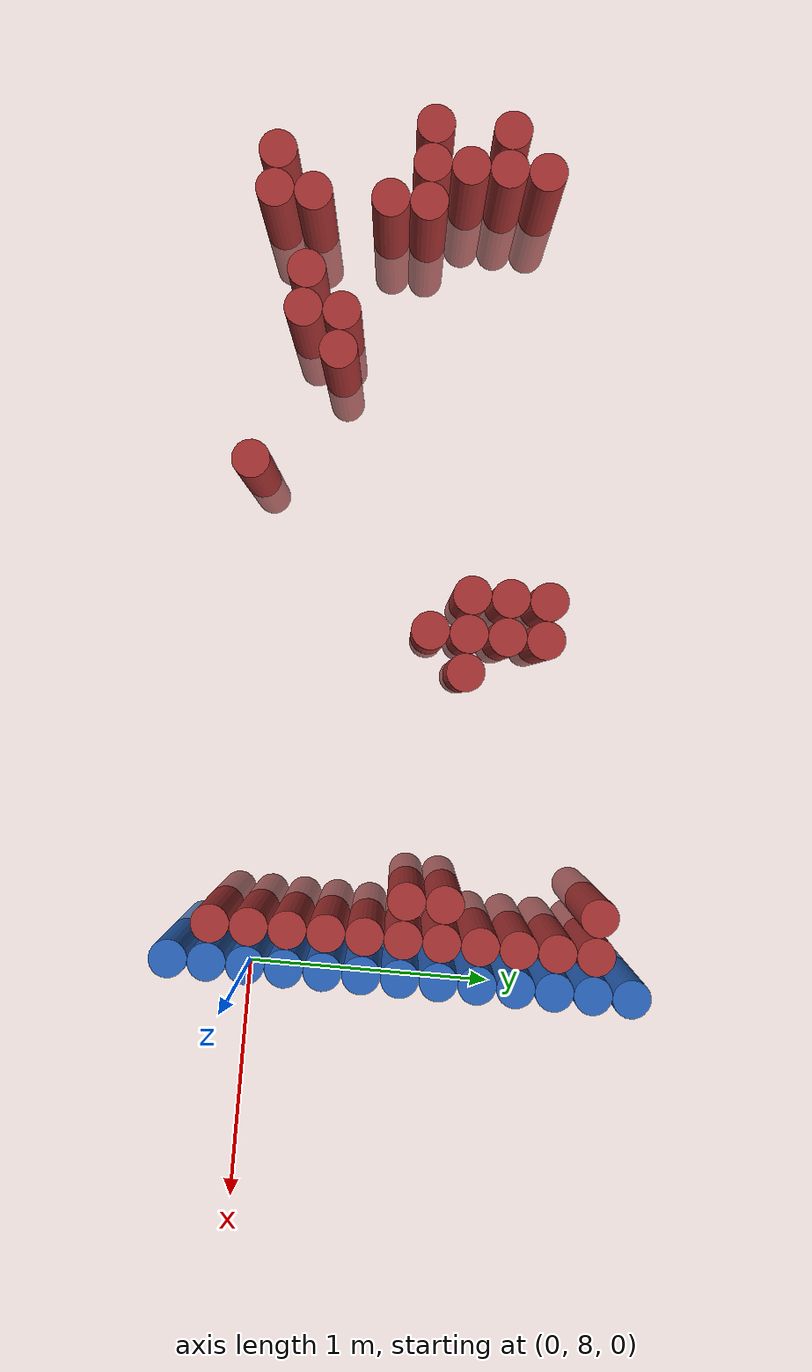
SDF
<sdf version="1.6">
 <world name="default">
  <model name="ground_plane">
   <static>1</static>
   <link name="link">
    <collision name="collision">
     <geometry><plane><normal>0 0 1</normal><size>100 100</size></plane></geometry>
     <surface><friction><ode><mu>100</mu><mu2>50</mu2></ode></friction></surface>
    </collision>
    <visual name="visual">
     <cast_shadows>0</cast_shadows>
     <geometry><plane><normal>0 0 1</normal><size>100 100</size></plane></geometry>
     <material>
      <script><uri>file://media/materials/scripts/gazebo.material</uri><name>Gazebo/Grey</name></script>
     </material>
    </visual>
   </link>
  </model>
  <model name="unit_cylinder_174">
   <static>1</static>
   <pose>-3.375000 8.475000 0.000000 0.000000 0.000000 0.000000</pose>
   <link name="link">
    <inertial>
     <mass>1</mass>
     <inertia><ixx>0.145833</ixx><ixy>0</ixy><ixz>0</ixz><iyy>0.145833</iyy><iyz>0</iyz><izz>0.125</izz></inertia>
    </inertial>
    <collision name="collision">
     <geometry><cylinder><radius>0.075000</radius><length>1</length></cylinder></geometry>
    </collision>
    <visual name="visual">
     <geometry><cylinder><radius>0.075000</radius><length>1</length></cylinder></geometry>
     <material>
      <ambient>0.648000 0.192000 0.192000 1</ambient>
      <diffuse>0.648000 0.192000 0.192000 1</diffuse>
     </material>
     <material>
      <script><name>Gazebo/Grey</name><uri>file://media/materials/scripts/gazebo.material</uri></script>
     </material>
    </visual>
   </link>
  </model>
  <model name="unit_cylinder_175">
   <static>1</static>
   <pose>-3.375000 8.775000 0.000000 0.000000 0.000000 0.000000</pose>
   <link name="link">
    <inertial>
     <mass>1</mass>
     <inertia><ixx>0.145833</ixx><ixy>0</ixy><ixz>0</ixz><iyy>0.145833</iyy><iyz>0</iyz><izz>0.125</izz></inertia>
    </inertial>
    <collision name="collision">
     <geometry><cylinder><radius>0.075000</radius><length>1</length></cylinder></geometry>
    </collision>
    <visual name="visual">
     <geometry><cylinder><radius>0.075000</radius><length>1</length></cylinder></geometry>
     <material>
      <ambient>0.648000 0.192000 0.192000 1</ambient>
      <diffuse>0.648000 0.192000 0.192000 1</diffuse>
     </material>
     <material>
      <script><name>Gazebo/Grey</name><uri>file://media/materials/scripts/gazebo.material</uri></script>
     </material>
    </visual>
   </link>
  </model>
  <model name="unit_cylinder_185">
   <static>1</static>
   <pose>-3.225000 7.875000 0.000000 0.000000 0.000000 0.000000</pose>
   <link name="link">
    <inertial>
     <mass>1</mass>
     <inertia><ixx>0.145833</ixx><ixy>0</ixy><ixz>0</ixz><iyy>0.145833</iyy><iyz>0</iyz><izz>0.125</izz></inertia>
    </inertial>
    <collision name="collision">
     <geometry><cylinder><radius>0.075000</radius><length>1</length></cylinder></geometry>
    </collision>
    <visual name="visual">
     <geometry><cylinder><radius>0.075000</radius><length>1</length></cylinder></geometry>
     <material>
      <ambient>0.648000 0.192000 0.192000 1</ambient>
      <diffuse>0.648000 0.192000 0.192000 1</diffuse>
     </material>
     <material>
      <script><name>Gazebo/Grey</name><uri>file://media/materials/scripts/gazebo.material</uri></script>
     </material>
    </visual>
   </link>
  </model>
  <model name="unit_cylinder_186">
   <static>1</static>
   <pose>-3.225000 8.475000 0.000000 0.000000 0.000000 0.000000</pose>
   <link name="link">
    <inertial>
     <mass>1</mass>
     <inertia><ixx>0.145833</ixx><ixy>0</ixy><ixz>0</ixz><iyy>0.145833</iyy><iyz>0</iyz><izz>0.125</izz></inertia>
    </inertial>
    <collision name="collision">
     <geometry><cylinder><radius>0.075000</radius><length>1</length></cylinder></geometry>
    </collision>
    <visual name="visual">
     <geometry><cylinder><radius>0.075000</radius><length>1</length></cylinder></geometry>
     <material>
      <ambient>0.648000 0.192000 0.192000 1</ambient>
      <diffuse>0.648000 0.192000 0.192000 1</diffuse>
     </material>
     <material>
      <script><name>Gazebo/Grey</name><uri>file://media/materials/scripts/gazebo.material</uri></script>
     </material>
    </visual>
   </link>
  </model>
  <model name="unit_cylinder_187">
   <static>1</static>
   <pose>-3.225000 8.625000 0.000000 0.000000 0.000000 0.000000</pose>
   <link name="link">
    <inertial>
     <mass>1</mass>
     <inertia><ixx>0.145833</ixx><ixy>0</ixy><ixz>0</ixz><iyy>0.145833</iyy><iyz>0</iyz><izz>0.125</izz></inertia>
    </inertial>
    <collision name="collision">
     <geometry><cylinder><radius>0.075000</radius><length>1</length></cylinder></geometry>
    </collision>
    <visual name="visual">
     <geometry><cylinder><radius>0.075000</radius><length>1</length></cylinder></geometry>
     <material>
      <ambient>0.648000 0.192000 0.192000 1</ambient>
      <diffuse>0.648000 0.192000 0.192000 1</diffuse>
     </material>
     <material>
      <script><name>Gazebo/Grey</name><uri>file://media/materials/scripts/gazebo.material</uri></script>
     </material>
    </visual>
   </link>
  </model>
  <model name="unit_cylinder_188">
   <static>1</static>
   <pose>-3.225000 8.775000 0.000000 0.000000 0.000000 0.000000</pose>
   <link name="link">
    <inertial>
     <mass>1</mass>
     <inertia><ixx>0.145833</ixx><ixy>0</ixy><ixz>0</ixz><iyy>0.145833</iyy><iyz>0</iyz><izz>0.125</izz></inertia>
    </inertial>
    <collision name="collision">
     <geometry><cylinder><radius>0.075000</radius><length>1</length></cylinder></geometry>
    </collision>
    <visual name="visual">
     <geometry><cylinder><radius>0.075000</radius><length>1</length></cylinder></geometry>
     <material>
      <ambient>0.648000 0.192000 0.192000 1</ambient>
      <diffuse>0.648000 0.192000 0.192000 1</diffuse>
     </material>
     <material>
      <script><name>Gazebo/Grey</name><uri>file://media/materials/scripts/gazebo.material</uri></script>
     </material>
    </visual>
   </link>
  </model>
  <model name="unit_cylinder_189">
   <static>1</static>
   <pose>-3.225000 8.925000 0.000000 0.000000 0.000000 0.000000</pose>
   <link name="link">
    <inertial>
     <mass>1</mass>
     <inertia><ixx>0.145833</ixx><ixy>0</ixy><ixz>0</ixz><iyy>0.145833</iyy><iyz>0</iyz><izz>0.125</izz></inertia>
    </inertial>
    <collision name="collision">
     <geometry><cylinder><radius>0.075000</radius><length>1</length></cylinder></geometry>
    </collision>
    <visual name="visual">
     <geometry><cylinder><radius>0.075000</radius><length>1</length></cylinder></geometry>
     <material>
      <ambient>0.648000 0.192000 0.192000 1</ambient>
      <diffuse>0.648000 0.192000 0.192000 1</diffuse>
     </material>
     <material>
      <script><name>Gazebo/Grey</name><uri>file://media/materials/scripts/gazebo.material</uri></script>
     </material>
    </visual>
   </link>
  </model>
  <model name="unit_cylinder_193">
   <static>1</static>
   <pose>-3.075000 7.875000 0.000000 0.000000 0.000000 0.000000</pose>
   <link name="link">
    <inertial>
     <mass>1</mass>
     <inertia><ixx>0.145833</ixx><ixy>0</ixy><ixz>0</ixz><iyy>0.145833</iyy><iyz>0</iyz><izz>0.125</izz></inertia>
    </inertial>
    <collision name="collision">
     <geometry><cylinder><radius>0.075000</radius><length>1</length></cylinder></geometry>
    </collision>
    <visual name="visual">
     <geometry><cylinder><radius>0.075000</radius><length>1</length></cylinder></geometry>
     <material>
      <ambient>0.648000 0.192000 0.192000 1</ambient>
      <diffuse>0.648000 0.192000 0.192000 1</diffuse>
     </material>
     <material>
      <script><name>Gazebo/Grey</name><uri>file://media/materials/scripts/gazebo.material</uri></script>
     </material>
    </visual>
   </link>
  </model>
  <model name="unit_cylinder_194">
   <static>1</static>
   <pose>-3.075000 8.025000 0.000000 0.000000 0.000000 0.000000</pose>
   <link name="link">
    <inertial>
     <mass>1</mass>
     <inertia><ixx>0.145833</ixx><ixy>0</ixy><ixz>0</ixz><iyy>0.145833</iyy><iyz>0</iyz><izz>0.125</izz></inertia>
    </inertial>
    <collision name="collision">
     <geometry><cylinder><radius>0.075000</radius><length>1</length></cylinder></geometry>
    </collision>
    <visual name="visual">
     <geometry><cylinder><radius>0.075000</radius><length>1</length></cylinder></geometry>
     <material>
      <ambient>0.648000 0.192000 0.192000 1</ambient>
      <diffuse>0.648000 0.192000 0.192000 1</diffuse>
     </material>
     <material>
      <script><name>Gazebo/Grey</name><uri>file://media/materials/scripts/gazebo.material</uri></script>
     </material>
    </visual>
   </link>
  </model>
  <model name="unit_cylinder_195">
   <static>1</static>
   <pose>-3.075000 8.325000 0.000000 0.000000 0.000000 0.000000</pose>
   <link name="link">
    <inertial>
     <mass>1</mass>
     <inertia><ixx>0.145833</ixx><ixy>0</ixy><ixz>0</ixz><iyy>0.145833</iyy><iyz>0</iyz><izz>0.125</izz></inertia>
    </inertial>
    <collision name="collision">
     <geometry><cylinder><radius>0.075000</radius><length>1</length></cylinder></geometry>
    </collision>
    <visual name="visual">
     <geometry><cylinder><radius>0.075000</radius><length>1</length></cylinder></geometry>
     <material>
      <ambient>0.648000 0.192000 0.192000 1</ambient>
      <diffuse>0.648000 0.192000 0.192000 1</diffuse>
     </material>
     <material>
      <script><name>Gazebo/Grey</name><uri>file://media/materials/scripts/gazebo.material</uri></script>
     </material>
    </visual>
   </link>
  </model>
  <model name="unit_cylinder_196">
   <static>1</static>
   <pose>-3.075000 8.475000 0.000000 0.000000 0.000000 0.000000</pose>
   <link name="link">
    <inertial>
     <mass>1</mass>
     <inertia><ixx>0.145833</ixx><ixy>0</ixy><ixz>0</ixz><iyy>0.145833</iyy><iyz>0</iyz><izz>0.125</izz></inertia>
    </inertial>
    <collision name="collision">
     <geometry><cylinder><radius>0.075000</radius><length>1</length></cylinder></geometry>
    </collision>
    <visual name="visual">
     <geometry><cylinder><radius>0.075000</radius><length>1</length></cylinder></geometry>
     <material>
      <ambient>0.648000 0.192000 0.192000 1</ambient>
      <diffuse>0.648000 0.192000 0.192000 1</diffuse>
     </material>
     <material>
      <script><name>Gazebo/Grey</name><uri>file://media/materials/scripts/gazebo.material</uri></script>
     </material>
    </visual>
   </link>
  </model>
  <model name="unit_cylinder_205">
   <static>1</static>
   <pose>-2.775000 8.025000 0.000000 0.000000 0.000000 0.000000</pose>
   <link name="link">
    <inertial>
     <mass>1</mass>
     <inertia><ixx>0.145833</ixx><ixy>0</ixy><ixz>0</ixz><iyy>0.145833</iyy><iyz>0</iyz><izz>0.125</izz></inertia>
    </inertial>
    <collision name="collision">
     <geometry><cylinder><radius>0.075000</radius><length>1</length></cylinder></geometry>
    </collision>
    <visual name="visual">
     <geometry><cylinder><radius>0.075000</radius><length>1</length></cylinder></geometry>
     <material>
      <ambient>0.648000 0.192000 0.192000 1</ambient>
      <diffuse>0.648000 0.192000 0.192000 1</diffuse>
     </material>
     <material>
      <script><name>Gazebo/Grey</name><uri>file://media/materials/scripts/gazebo.material</uri></script>
     </material>
    </visual>
   </link>
  </model>
  <model name="unit_cylinder_206">
   <static>1</static>
   <pose>-2.625000 8.025000 0.000000 0.000000 0.000000 0.000000</pose>
   <link name="link">
    <inertial>
     <mass>1</mass>
     <inertia><ixx>0.145833</ixx><ixy>0</ixy><ixz>0</ixz><iyy>0.145833</iyy><iyz>0</iyz><izz>0.125</izz></inertia>
    </inertial>
    <collision name="collision">
     <geometry><cylinder><radius>0.075000</radius><length>1</length></cylinder></geometry>
    </collision>
    <visual name="visual">
     <geometry><cylinder><radius>0.075000</radius><length>1</length></cylinder></geometry>
     <material>
      <ambient>0.648000 0.192000 0.192000 1</ambient>
      <diffuse>0.648000 0.192000 0.192000 1</diffuse>
     </material>
     <material>
      <script><name>Gazebo/Grey</name><uri>file://media/materials/scripts/gazebo.material</uri></script>
     </material>
    </visual>
   </link>
  </model>
  <model name="unit_cylinder_207">
   <static>1</static>
   <pose>-2.625000 8.175000 0.000000 0.000000 0.000000 0.000000</pose>
   <link name="link">
    <inertial>
     <mass>1</mass>
     <inertia><ixx>0.145833</ixx><ixy>0</ixy><ixz>0</ixz><iyy>0.145833</iyy><iyz>0</iyz><izz>0.125</izz></inertia>
    </inertial>
    <collision name="collision">
     <geometry><cylinder><radius>0.075000</radius><length>1</length></cylinder></geometry>
    </collision>
    <visual name="visual">
     <geometry><cylinder><radius>0.075000</radius><length>1</length></cylinder></geometry>
     <material>
      <ambient>0.648000 0.192000 0.192000 1</ambient>
      <diffuse>0.648000 0.192000 0.192000 1</diffuse>
     </material>
     <material>
      <script><name>Gazebo/Grey</name><uri>file://media/materials/scripts/gazebo.material</uri></script>
     </material>
    </visual>
   </link>
  </model>
  <model name="unit_cylinder_209">
   <static>1</static>
   <pose>-2.475000 8.175000 0.000000 0.000000 0.000000 0.000000</pose>
   <link name="link">
    <inertial>
     <mass>1</mass>
     <inertia><ixx>0.145833</ixx><ixy>0</ixy><ixz>0</ixz><iyy>0.145833</iyy><iyz>0</iyz><izz>0.125</izz></inertia>
    </inertial>
    <collision name="collision">
     <geometry><cylinder><radius>0.075000</radius><length>1</length></cylinder></geometry>
    </collision>
    <visual name="visual">
     <geometry><cylinder><radius>0.075000</radius><length>1</length></cylinder></geometry>
     <material>
      <ambient>0.648000 0.192000 0.192000 1</ambient>
      <diffuse>0.648000 0.192000 0.192000 1</diffuse>
     </material>
     <material>
      <script><name>Gazebo/Grey</name><uri>file://media/materials/scripts/gazebo.material</uri></script>
     </material>
    </visual>
   </link>
  </model>
  <model name="unit_cylinder_218">
   <static>1</static>
   <pose>-2.025000 7.875000 0.000000 0.000000 0.000000 0.000000</pose>
   <link name="link">
    <inertial>
     <mass>1</mass>
     <inertia><ixx>0.145833</ixx><ixy>0</ixy><ixz>0</ixz><iyy>0.145833</iyy><iyz>0</iyz><izz>0.125</izz></inertia>
    </inertial>
    <collision name="collision">
     <geometry><cylinder><radius>0.075000</radius><length>1</length></cylinder></geometry>
    </collision>
    <visual name="visual">
     <geometry><cylinder><radius>0.075000</radius><length>1</length></cylinder></geometry>
     <material>
      <ambient>0.648000 0.192000 0.192000 1</ambient>
      <diffuse>0.648000 0.192000 0.192000 1</diffuse>
     </material>
     <material>
      <script><name>Gazebo/Grey</name><uri>file://media/materials/scripts/gazebo.material</uri></script>
     </material>
    </visual>
   </link>
  </model>
  <model name="unit_cylinder_219">
   <static>1</static>
   <pose>-1.575000 8.775000 0.000000 0.000000 0.000000 0.000000</pose>
   <link name="link">
    <inertial>
     <mass>1</mass>
     <inertia><ixx>0.145833</ixx><ixy>0</ixy><ixz>0</ixz><iyy>0.145833</iyy><iyz>0</iyz><izz>0.125</izz></inertia>
    </inertial>
    <collision name="collision">
     <geometry><cylinder><radius>0.075000</radius><length>1</length></cylinder></geometry>
    </collision>
    <visual name="visual">
     <geometry><cylinder><radius>0.075000</radius><length>1</length></cylinder></geometry>
     <material>
      <ambient>0.648000 0.192000 0.192000 1</ambient>
      <diffuse>0.648000 0.192000 0.192000 1</diffuse>
     </material>
     <material>
      <script><name>Gazebo/Grey</name><uri>file://media/materials/scripts/gazebo.material</uri></script>
     </material>
    </visual>
   </link>
  </model>
  <model name="unit_cylinder_220">
   <static>1</static>
   <pose>-1.575000 8.925000 0.000000 0.000000 0.000000 0.000000</pose>
   <link name="link">
    <inertial>
     <mass>1</mass>
     <inertia><ixx>0.145833</ixx><ixy>0</ixy><ixz>0</ixz><iyy>0.145833</iyy><iyz>0</iyz><izz>0.125</izz></inertia>
    </inertial>
    <collision name="collision">
     <geometry><cylinder><radius>0.075000</radius><length>1</length></cylinder></geometry>
    </collision>
    <visual name="visual">
     <geometry><cylinder><radius>0.075000</radius><length>1</length></cylinder></geometry>
     <material>
      <ambient>0.648000 0.192000 0.192000 1</ambient>
      <diffuse>0.648000 0.192000 0.192000 1</diffuse>
     </material>
     <material>
      <script><name>Gazebo/Grey</name><uri>file://media/materials/scripts/gazebo.material</uri></script>
     </material>
    </visual>
   </link>
  </model>
  <model name="unit_cylinder_221">
   <static>1</static>
   <pose>-1.575000 9.075000 0.000000 0.000000 0.000000 0.000000</pose>
   <link name="link">
    <inertial>
     <mass>1</mass>
     <inertia><ixx>0.145833</ixx><ixy>0</ixy><ixz>0</ixz><iyy>0.145833</iyy><iyz>0</iyz><izz>0.125</izz></inertia>
    </inertial>
    <collision name="collision">
     <geometry><cylinder><radius>0.075000</radius><length>1</length></cylinder></geometry>
    </collision>
    <visual name="visual">
     <geometry><cylinder><radius>0.075000</radius><length>1</length></cylinder></geometry>
     <material>
      <ambient>0.648000 0.192000 0.192000 1</ambient>
      <diffuse>0.648000 0.192000 0.192000 1</diffuse>
     </material>
     <material>
      <script><name>Gazebo/Grey</name><uri>file://media/materials/scripts/gazebo.material</uri></script>
     </material>
    </visual>
   </link>
  </model>
  <model name="unit_cylinder_222">
   <static>1</static>
   <pose>-1.425000 8.625000 0.000000 0.000000 0.000000 0.000000</pose>
   <link name="link">
    <inertial>
     <mass>1</mass>
     <inertia><ixx>0.145833</ixx><ixy>0</ixy><ixz>0</ixz><iyy>0.145833</iyy><iyz>0</iyz><izz>0.125</izz></inertia>
    </inertial>
    <collision name="collision">
     <geometry><cylinder><radius>0.075000</radius><length>1</length></cylinder></geometry>
    </collision>
    <visual name="visual">
     <geometry><cylinder><radius>0.075000</radius><length>1</length></cylinder></geometry>
     <material>
      <ambient>0.648000 0.192000 0.192000 1</ambient>
      <diffuse>0.648000 0.192000 0.192000 1</diffuse>
     </material>
     <material>
      <script><name>Gazebo/Grey</name><uri>file://media/materials/scripts/gazebo.material</uri></script>
     </material>
    </visual>
   </link>
  </model>
  <model name="unit_cylinder_223">
   <static>1</static>
   <pose>-1.425000 8.775000 0.000000 0.000000 0.000000 0.000000</pose>
   <link name="link">
    <inertial>
     <mass>1</mass>
     <inertia><ixx>0.145833</ixx><ixy>0</ixy><ixz>0</ixz><iyy>0.145833</iyy><iyz>0</iyz><izz>0.125</izz></inertia>
    </inertial>
    <collision name="collision">
     <geometry><cylinder><radius>0.075000</radius><length>1</length></cylinder></geometry>
    </collision>
    <visual name="visual">
     <geometry><cylinder><radius>0.075000</radius><length>1</length></cylinder></geometry>
     <material>
      <ambient>0.648000 0.192000 0.192000 1</ambient>
      <diffuse>0.648000 0.192000 0.192000 1</diffuse>
     </material>
     <material>
      <script><name>Gazebo/Grey</name><uri>file://media/materials/scripts/gazebo.material</uri></script>
     </material>
    </visual>
   </link>
  </model>
  <model name="unit_cylinder_224">
   <static>1</static>
   <pose>-1.425000 8.925000 0.000000 0.000000 0.000000 0.000000</pose>
   <link name="link">
    <inertial>
     <mass>1</mass>
     <inertia><ixx>0.145833</ixx><ixy>0</ixy><ixz>0</ixz><iyy>0.145833</iyy><iyz>0</iyz><izz>0.125</izz></inertia>
    </inertial>
    <collision name="collision">
     <geometry><cylinder><radius>0.075000</radius><length>1</length></cylinder></geometry>
    </collision>
    <visual name="visual">
     <geometry><cylinder><radius>0.075000</radius><length>1</length></cylinder></geometry>
     <material>
      <ambient>0.648000 0.192000 0.192000 1</ambient>
      <diffuse>0.648000 0.192000 0.192000 1</diffuse>
     </material>
     <material>
      <script><name>Gazebo/Grey</name><uri>file://media/materials/scripts/gazebo.material</uri></script>
     </material>
    </visual>
   </link>
  </model>
  <model name="unit_cylinder_225">
   <static>1</static>
   <pose>-1.425000 9.075000 0.000000 0.000000 0.000000 0.000000</pose>
   <link name="link">
    <inertial>
     <mass>1</mass>
     <inertia><ixx>0.145833</ixx><ixy>0</ixy><ixz>0</ixz><iyy>0.145833</iyy><iyz>0</iyz><izz>0.125</izz></inertia>
    </inertial>
    <collision name="collision">
     <geometry><cylinder><radius>0.075000</radius><length>1</length></cylinder></geometry>
    </collision>
    <visual name="visual">
     <geometry><cylinder><radius>0.075000</radius><length>1</length></cylinder></geometry>
     <material>
      <ambient>0.648000 0.192000 0.192000 1</ambient>
      <diffuse>0.648000 0.192000 0.192000 1</diffuse>
     </material>
     <material>
      <script><name>Gazebo/Grey</name><uri>file://media/materials/scripts/gazebo.material</uri></script>
     </material>
    </visual>
   </link>
  </model>
  <model name="unit_cylinder_226">
   <static>1</static>
   <pose>-1.275000 8.775000 0.000000 0.000000 0.000000 0.000000</pose>
   <link name="link">
    <inertial>
     <mass>1</mass>
     <inertia><ixx>0.145833</ixx><ixy>0</ixy><ixz>0</ixz><iyy>0.145833</iyy><iyz>0</iyz><izz>0.125</izz></inertia>
    </inertial>
    <collision name="collision">
     <geometry><cylinder><radius>0.075000</radius><length>1</length></cylinder></geometry>
    </collision>
    <visual name="visual">
     <geometry><cylinder><radius>0.075000</radius><length>1</length></cylinder></geometry>
     <material>
      <ambient>0.648000 0.192000 0.192000 1</ambient>
      <diffuse>0.648000 0.192000 0.192000 1</diffuse>
     </material>
     <material>
      <script><name>Gazebo/Grey</name><uri>file://media/materials/scripts/gazebo.material</uri></script>
     </material>
    </visual>
   </link>
  </model>
  <model name="unit_cylinder_251">
   <static>1</static>
   <pose>-0.375000 8.625000 0.000000 0.000000 0.000000 0.000000</pose>
   <link name="link">
    <inertial>
     <mass>1</mass>
     <inertia><ixx>0.145833</ixx><ixy>0</ixy><ixz>0</ixz><iyy>0.145833</iyy><iyz>0</iyz><izz>0.125</izz></inertia>
    </inertial>
    <collision name="collision">
     <geometry><cylinder><radius>0.075000</radius><length>1</length></cylinder></geometry>
    </collision>
    <visual name="visual">
     <geometry><cylinder><radius>0.075000</radius><length>1</length></cylinder></geometry>
     <material>
      <ambient>0.648000 0.192000 0.192000 1</ambient>
      <diffuse>0.648000 0.192000 0.192000 1</diffuse>
     </material>
     <material>
      <script><name>Gazebo/Grey</name><uri>file://media/materials/scripts/gazebo.material</uri></script>
     </material>
    </visual>
   </link>
  </model>
  <model name="unit_cylinder_252">
   <static>1</static>
   <pose>-0.375000 8.775000 0.000000 0.000000 0.000000 0.000000</pose>
   <link name="link">
    <inertial>
     <mass>1</mass>
     <inertia><ixx>0.145833</ixx><ixy>0</ixy><ixz>0</ixz><iyy>0.145833</iyy><iyz>0</iyz><izz>0.125</izz></inertia>
    </inertial>
    <collision name="collision">
     <geometry><cylinder><radius>0.075000</radius><length>1</length></cylinder></geometry>
    </collision>
    <visual name="visual">
     <geometry><cylinder><radius>0.075000</radius><length>1</length></cylinder></geometry>
     <material>
      <ambient>0.648000 0.192000 0.192000 1</ambient>
      <diffuse>0.648000 0.192000 0.192000 1</diffuse>
     </material>
     <material>
      <script><name>Gazebo/Grey</name><uri>file://media/materials/scripts/gazebo.material</uri></script>
     </material>
    </visual>
   </link>
  </model>
  <model name="unit_cylinder_253">
   <static>1</static>
   <pose>-0.375000 9.375000 0.000000 0.000000 0.000000 0.000000</pose>
   <link name="link">
    <inertial>
     <mass>1</mass>
     <inertia><ixx>0.145833</ixx><ixy>0</ixy><ixz>0</ixz><iyy>0.145833</iyy><iyz>0</iyz><izz>0.125</izz></inertia>
    </inertial>
    <collision name="collision">
     <geometry><cylinder><radius>0.075000</radius><length>1</length></cylinder></geometry>
    </collision>
    <visual name="visual">
     <geometry><cylinder><radius>0.075000</radius><length>1</length></cylinder></geometry>
     <material>
      <ambient>0.648000 0.192000 0.192000 1</ambient>
      <diffuse>0.648000 0.192000 0.192000 1</diffuse>
     </material>
     <material>
      <script><name>Gazebo/Grey</name><uri>file://media/materials/scripts/gazebo.material</uri></script>
     </material>
    </visual>
   </link>
  </model>
  <model name="unit_cylinder_262">
   <static>1</static>
   <pose>-0.225000 7.875000 0.000000 0.000000 0.000000 0.000000</pose>
   <link name="link">
    <inertial>
     <mass>1</mass>
     <inertia><ixx>0.145833</ixx><ixy>0</ixy><ixz>0</ixz><iyy>0.145833</iyy><iyz>0</iyz><izz>0.125</izz></inertia>
    </inertial>
    <collision name="collision">
     <geometry><cylinder><radius>0.075000</radius><length>1</length></cylinder></geometry>
    </collision>
    <visual name="visual">
     <geometry><cylinder><radius>0.075000</radius><length>1</length></cylinder></geometry>
     <material>
      <ambient>0.648000 0.192000 0.192000 1</ambient>
      <diffuse>0.648000 0.192000 0.192000 1</diffuse>
     </material>
     <material>
      <script><name>Gazebo/Grey</name><uri>file://media/materials/scripts/gazebo.material</uri></script>
     </material>
    </visual>
   </link>
  </model>
  <model name="unit_cylinder_263">
   <static>1</static>
   <pose>-0.225000 8.025000 0.000000 0.000000 0.000000 0.000000</pose>
   <link name="link">
    <inertial>
     <mass>1</mass>
     <inertia><ixx>0.145833</ixx><ixy>0</ixy><ixz>0</ixz><iyy>0.145833</iyy><iyz>0</iyz><izz>0.125</izz></inertia>
    </inertial>
    <collision name="collision">
     <geometry><cylinder><radius>0.075000</radius><length>1</length></cylinder></geometry>
    </collision>
    <visual name="visual">
     <geometry><cylinder><radius>0.075000</radius><length>1</length></cylinder></geometry>
     <material>
      <ambient>0.648000 0.192000 0.192000 1</ambient>
      <diffuse>0.648000 0.192000 0.192000 1</diffuse>
     </material>
     <material>
      <script><name>Gazebo/Grey</name><uri>file://media/materials/scripts/gazebo.material</uri></script>
     </material>
    </visual>
   </link>
  </model>
  <model name="unit_cylinder_264">
   <static>1</static>
   <pose>-0.225000 8.175000 0.000000 0.000000 0.000000 0.000000</pose>
   <link name="link">
    <inertial>
     <mass>1</mass>
     <inertia><ixx>0.145833</ixx><ixy>0</ixy><ixz>0</ixz><iyy>0.145833</iyy><iyz>0</iyz><izz>0.125</izz></inertia>
    </inertial>
    <collision name="collision">
     <geometry><cylinder><radius>0.075000</radius><length>1</length></cylinder></geometry>
    </collision>
    <visual name="visual">
     <geometry><cylinder><radius>0.075000</radius><length>1</length></cylinder></geometry>
     <material>
      <ambient>0.648000 0.192000 0.192000 1</ambient>
      <diffuse>0.648000 0.192000 0.192000 1</diffuse>
     </material>
     <material>
      <script><name>Gazebo/Grey</name><uri>file://media/materials/scripts/gazebo.material</uri></script>
     </material>
    </visual>
   </link>
  </model>
  <model name="unit_cylinder_265">
   <static>1</static>
   <pose>-0.225000 8.325000 0.000000 0.000000 0.000000 0.000000</pose>
   <link name="link">
    <inertial>
     <mass>1</mass>
     <inertia><ixx>0.145833</ixx><ixy>0</ixy><ixz>0</ixz><iyy>0.145833</iyy><iyz>0</iyz><izz>0.125</izz></inertia>
    </inertial>
    <collision name="collision">
     <geometry><cylinder><radius>0.075000</radius><length>1</length></cylinder></geometry>
    </collision>
    <visual name="visual">
     <geometry><cylinder><radius>0.075000</radius><length>1</length></cylinder></geometry>
     <material>
      <ambient>0.648000 0.192000 0.192000 1</ambient>
      <diffuse>0.648000 0.192000 0.192000 1</diffuse>
     </material>
     <material>
      <script><name>Gazebo/Grey</name><uri>file://media/materials/scripts/gazebo.material</uri></script>
     </material>
    </visual>
   </link>
  </model>
  <model name="unit_cylinder_266">
   <static>1</static>
   <pose>-0.225000 8.475000 0.000000 0.000000 0.000000 0.000000</pose>
   <link name="link">
    <inertial>
     <mass>1</mass>
     <inertia><ixx>0.145833</ixx><ixy>0</ixy><ixz>0</ixz><iyy>0.145833</iyy><iyz>0</iyz><izz>0.125</izz></inertia>
    </inertial>
    <collision name="collision">
     <geometry><cylinder><radius>0.075000</radius><length>1</length></cylinder></geometry>
    </collision>
    <visual name="visual">
     <geometry><cylinder><radius>0.075000</radius><length>1</length></cylinder></geometry>
     <material>
      <ambient>0.648000 0.192000 0.192000 1</ambient>
      <diffuse>0.648000 0.192000 0.192000 1</diffuse>
     </material>
     <material>
      <script><name>Gazebo/Grey</name><uri>file://media/materials/scripts/gazebo.material</uri></script>
     </material>
    </visual>
   </link>
  </model>
  <model name="unit_cylinder_267">
   <static>1</static>
   <pose>-0.225000 8.625000 0.000000 0.000000 0.000000 0.000000</pose>
   <link name="link">
    <inertial>
     <mass>1</mass>
     <inertia><ixx>0.145833</ixx><ixy>0</ixy><ixz>0</ixz><iyy>0.145833</iyy><iyz>0</iyz><izz>0.125</izz></inertia>
    </inertial>
    <collision name="collision">
     <geometry><cylinder><radius>0.075000</radius><length>1</length></cylinder></geometry>
    </collision>
    <visual name="visual">
     <geometry><cylinder><radius>0.075000</radius><length>1</length></cylinder></geometry>
     <material>
      <ambient>0.648000 0.192000 0.192000 1</ambient>
      <diffuse>0.648000 0.192000 0.192000 1</diffuse>
     </material>
     <material>
      <script><name>Gazebo/Grey</name><uri>file://media/materials/scripts/gazebo.material</uri></script>
     </material>
    </visual>
   </link>
  </model>
  <model name="unit_cylinder_268">
   <static>1</static>
   <pose>-0.225000 8.775000 0.000000 0.000000 0.000000 0.000000</pose>
   <link name="link">
    <inertial>
     <mass>1</mass>
     <inertia><ixx>0.145833</ixx><ixy>0</ixy><ixz>0</ixz><iyy>0.145833</iyy><iyz>0</iyz><izz>0.125</izz></inertia>
    </inertial>
    <collision name="collision">
     <geometry><cylinder><radius>0.075000</radius><length>1</length></cylinder></geometry>
    </collision>
    <visual name="visual">
     <geometry><cylinder><radius>0.075000</radius><length>1</length></cylinder></geometry>
     <material>
      <ambient>0.648000 0.192000 0.192000 1</ambient>
      <diffuse>0.648000 0.192000 0.192000 1</diffuse>
     </material>
     <material>
      <script><name>Gazebo/Grey</name><uri>file://media/materials/scripts/gazebo.material</uri></script>
     </material>
    </visual>
   </link>
  </model>
  <model name="unit_cylinder_269">
   <static>1</static>
   <pose>-0.225000 8.925000 0.000000 0.000000 0.000000 0.000000</pose>
   <link name="link">
    <inertial>
     <mass>1</mass>
     <inertia><ixx>0.145833</ixx><ixy>0</ixy><ixz>0</ixz><iyy>0.145833</iyy><iyz>0</iyz><izz>0.125</izz></inertia>
    </inertial>
    <collision name="collision">
     <geometry><cylinder><radius>0.075000</radius><length>1</length></cylinder></geometry>
    </collision>
    <visual name="visual">
     <geometry><cylinder><radius>0.075000</radius><length>1</length></cylinder></geometry>
     <material>
      <ambient>0.648000 0.192000 0.192000 1</ambient>
      <diffuse>0.648000 0.192000 0.192000 1</diffuse>
     </material>
     <material>
      <script><name>Gazebo/Grey</name><uri>file://media/materials/scripts/gazebo.material</uri></script>
     </material>
    </visual>
   </link>
  </model>
  <model name="unit_cylinder_270">
   <static>1</static>
   <pose>-0.225000 9.075000 0.000000 0.000000 0.000000 0.000000</pose>
   <link name="link">
    <inertial>
     <mass>1</mass>
     <inertia><ixx>0.145833</ixx><ixy>0</ixy><ixz>0</ixz><iyy>0.145833</iyy><iyz>0</iyz><izz>0.125</izz></inertia>
    </inertial>
    <collision name="collision">
     <geometry><cylinder><radius>0.075000</radius><length>1</length></cylinder></geometry>
    </collision>
    <visual name="visual">
     <geometry><cylinder><radius>0.075000</radius><length>1</length></cylinder></geometry>
     <material>
      <ambient>0.648000 0.192000 0.192000 1</ambient>
      <diffuse>0.648000 0.192000 0.192000 1</diffuse>
     </material>
     <material>
      <script><name>Gazebo/Grey</name><uri>file://media/materials/scripts/gazebo.material</uri></script>
     </material>
    </visual>
   </link>
  </model>
  <model name="unit_cylinder_271">
   <static>1</static>
   <pose>-0.225000 9.225000 0.000000 0.000000 0.000000 0.000000</pose>
   <link name="link">
    <inertial>
     <mass>1</mass>
     <inertia><ixx>0.145833</ixx><ixy>0</ixy><ixz>0</ixz><iyy>0.145833</iyy><iyz>0</iyz><izz>0.125</izz></inertia>
    </inertial>
    <collision name="collision">
     <geometry><cylinder><radius>0.075000</radius><length>1</length></cylinder></geometry>
    </collision>
    <visual name="visual">
     <geometry><cylinder><radius>0.075000</radius><length>1</length></cylinder></geometry>
     <material>
      <ambient>0.648000 0.192000 0.192000 1</ambient>
      <diffuse>0.648000 0.192000 0.192000 1</diffuse>
     </material>
     <material>
      <script><name>Gazebo/Grey</name><uri>file://media/materials/scripts/gazebo.material</uri></script>
     </material>
    </visual>
   </link>
  </model>
  <model name="unit_cylinder_272">
   <static>1</static>
   <pose>-0.225000 9.375000 0.000000 0.000000 0.000000 0.000000</pose>
   <link name="link">
    <inertial>
     <mass>1</mass>
     <inertia><ixx>0.145833</ixx><ixy>0</ixy><ixz>0</ixz><iyy>0.145833</iyy><iyz>0</iyz><izz>0.125</izz></inertia>
    </inertial>
    <collision name="collision">
     <geometry><cylinder><radius>0.075000</radius><length>1</length></cylinder></geometry>
    </collision>
    <visual name="visual">
     <geometry><cylinder><radius>0.075000</radius><length>1</length></cylinder></geometry>
     <material>
      <ambient>0.648000 0.192000 0.192000 1</ambient>
      <diffuse>0.648000 0.192000 0.192000 1</diffuse>
     </material>
     <material>
      <script><name>Gazebo/Grey</name><uri>file://media/materials/scripts/gazebo.material</uri></script>
     </material>
    </visual>
   </link>
  </model>
  <model name="unit_cylinder_290">
   <static>1</static>
   <pose>-0.075000 7.725000 0.000000 0.000000 0.000000 0.000000</pose>
   <link name="link">
    <inertial>
     <mass>1</mass>
     <inertia><ixx>0.145833</ixx><ixy>0</ixy><ixz>0</ixz><iyy>0.145833</iyy><iyz>0</iyz><izz>0.125</izz></inertia>
    </inertial>
    <collision name="collision">
     <geometry><cylinder><radius>0.075000</radius><length>1</length></cylinder></geometry>
    </collision>
    <visual name="visual">
     <geometry><cylinder><radius>0.075000</radius><length>1</length></cylinder></geometry>
     <material>
      <ambient>0.152000 0.379000 0.720000 1</ambient>
      <diffuse>0.152000 0.379000 0.720000 1</diffuse>
     </material>
     <material>
      <script><name>Gazebo/Grey</name><uri>file://media/materials/scripts/gazebo.material</uri></script>
     </material>
    </visual>
   </link>
  </model>
  <model name="unit_cylinder_291">
   <static>1</static>
   <pose>-0.075000 7.875000 0.000000 0.000000 0.000000 0.000000</pose>
   <link name="link">
    <inertial>
     <mass>1</mass>
     <inertia><ixx>0.145833</ixx><ixy>0</ixy><ixz>0</ixz><iyy>0.145833</iyy><iyz>0</iyz><izz>0.125</izz></inertia>
    </inertial>
    <collision name="collision">
     <geometry><cylinder><radius>0.075000</radius><length>1</length></cylinder></geometry>
    </collision>
    <visual name="visual">
     <geometry><cylinder><radius>0.075000</radius><length>1</length></cylinder></geometry>
     <material>
      <ambient>0.152000 0.379000 0.720000 1</ambient>
      <diffuse>0.152000 0.379000 0.720000 1</diffuse>
     </material>
     <material>
      <script><name>Gazebo/Grey</name><uri>file://media/materials/scripts/gazebo.material</uri></script>
     </material>
    </visual>
   </link>
  </model>
  <model name="unit_cylinder_292">
   <static>1</static>
   <pose>-0.075000 8.025000 0.000000 0.000000 0.000000 0.000000</pose>
   <link name="link">
    <inertial>
     <mass>1</mass>
     <inertia><ixx>0.145833</ixx><ixy>0</ixy><ixz>0</ixz><iyy>0.145833</iyy><iyz>0</iyz><izz>0.125</izz></inertia>
    </inertial>
    <collision name="collision">
     <geometry><cylinder><radius>0.075000</radius><length>1</length></cylinder></geometry>
    </collision>
    <visual name="visual">
     <geometry><cylinder><radius>0.075000</radius><length>1</length></cylinder></geometry>
     <material>
      <ambient>0.152000 0.379000 0.720000 1</ambient>
      <diffuse>0.152000 0.379000 0.720000 1</diffuse>
     </material>
     <material>
      <script><name>Gazebo/Grey</name><uri>file://media/materials/scripts/gazebo.material</uri></script>
     </material>
    </visual>
   </link>
  </model>
  <model name="unit_cylinder_293">
   <static>1</static>
   <pose>-0.075000 8.175000 0.000000 0.000000 0.000000 0.000000</pose>
   <link name="link">
    <inertial>
     <mass>1</mass>
     <inertia><ixx>0.145833</ixx><ixy>0</ixy><ixz>0</ixz><iyy>0.145833</iyy><iyz>0</iyz><izz>0.125</izz></inertia>
    </inertial>
    <collision name="collision">
     <geometry><cylinder><radius>0.075000</radius><length>1</length></cylinder></geometry>
    </collision>
    <visual name="visual">
     <geometry><cylinder><radius>0.075000</radius><length>1</length></cylinder></geometry>
     <material>
      <ambient>0.152000 0.379000 0.720000 1</ambient>
      <diffuse>0.152000 0.379000 0.720000 1</diffuse>
     </material>
     <material>
      <script><name>Gazebo/Grey</name><uri>file://media/materials/scripts/gazebo.material</uri></script>
     </material>
    </visual>
   </link>
  </model>
  <model name="unit_cylinder_294">
   <static>1</static>
   <pose>-0.075000 8.325000 0.000000 0.000000 0.000000 0.000000</pose>
   <link name="link">
    <inertial>
     <mass>1</mass>
     <inertia><ixx>0.145833</ixx><ixy>0</ixy><ixz>0</ixz><iyy>0.145833</iyy><iyz>0</iyz><izz>0.125</izz></inertia>
    </inertial>
    <collision name="collision">
     <geometry><cylinder><radius>0.075000</radius><length>1</length></cylinder></geometry>
    </collision>
    <visual name="visual">
     <geometry><cylinder><radius>0.075000</radius><length>1</length></cylinder></geometry>
     <material>
      <ambient>0.152000 0.379000 0.720000 1</ambient>
      <diffuse>0.152000 0.379000 0.720000 1</diffuse>
     </material>
     <material>
      <script><name>Gazebo/Grey</name><uri>file://media/materials/scripts/gazebo.material</uri></script>
     </material>
    </visual>
   </link>
  </model>
  <model name="unit_cylinder_295">
   <static>1</static>
   <pose>-0.075000 8.475000 0.000000 0.000000 0.000000 0.000000</pose>
   <link name="link">
    <inertial>
     <mass>1</mass>
     <inertia><ixx>0.145833</ixx><ixy>0</ixy><ixz>0</ixz><iyy>0.145833</iyy><iyz>0</iyz><izz>0.125</izz></inertia>
    </inertial>
    <collision name="collision">
     <geometry><cylinder><radius>0.075000</radius><length>1</length></cylinder></geometry>
    </collision>
    <visual name="visual">
     <geometry><cylinder><radius>0.075000</radius><length>1</length></cylinder></geometry>
     <material>
      <ambient>0.152000 0.379000 0.720000 1</ambient>
      <diffuse>0.152000 0.379000 0.720000 1</diffuse>
     </material>
     <material>
      <script><name>Gazebo/Grey</name><uri>file://media/materials/scripts/gazebo.material</uri></script>
     </material>
    </visual>
   </link>
  </model>
  <model name="unit_cylinder_296">
   <static>1</static>
   <pose>-0.075000 8.625000 0.000000 0.000000 0.000000 0.000000</pose>
   <link name="link">
    <inertial>
     <mass>1</mass>
     <inertia><ixx>0.145833</ixx><ixy>0</ixy><ixz>0</ixz><iyy>0.145833</iyy><iyz>0</iyz><izz>0.125</izz></inertia>
    </inertial>
    <collision name="collision">
     <geometry><cylinder><radius>0.075000</radius><length>1</length></cylinder></geometry>
    </collision>
    <visual name="visual">
     <geometry><cylinder><radius>0.075000</radius><length>1</length></cylinder></geometry>
     <material>
      <ambient>0.152000 0.379000 0.720000 1</ambient>
      <diffuse>0.152000 0.379000 0.720000 1</diffuse>
     </material>
     <material>
      <script><name>Gazebo/Grey</name><uri>file://media/materials/scripts/gazebo.material</uri></script>
     </material>
    </visual>
   </link>
  </model>
  <model name="unit_cylinder_297">
   <static>1</static>
   <pose>-0.075000 8.775000 0.000000 0.000000 0.000000 0.000000</pose>
   <link name="link">
    <inertial>
     <mass>1</mass>
     <inertia><ixx>0.145833</ixx><ixy>0</ixy><ixz>0</ixz><iyy>0.145833</iyy><iyz>0</iyz><izz>0.125</izz></inertia>
    </inertial>
    <collision name="collision">
     <geometry><cylinder><radius>0.075000</radius><length>1</length></cylinder></geometry>
    </collision>
    <visual name="visual">
     <geometry><cylinder><radius>0.075000</radius><length>1</length></cylinder></geometry>
     <material>
      <ambient>0.152000 0.379000 0.720000 1</ambient>
      <diffuse>0.152000 0.379000 0.720000 1</diffuse>
     </material>
     <material>
      <script><name>Gazebo/Grey</name><uri>file://media/materials/scripts/gazebo.material</uri></script>
     </material>
    </visual>
   </link>
  </model>
  <model name="unit_cylinder_298">
   <static>1</static>
   <pose>-0.075000 8.925000 0.000000 0.000000 0.000000 0.000000</pose>
   <link name="link">
    <inertial>
     <mass>1</mass>
     <inertia><ixx>0.145833</ixx><ixy>0</ixy><ixz>0</ixz><iyy>0.145833</iyy><iyz>0</iyz><izz>0.125</izz></inertia>
    </inertial>
    <collision name="collision">
     <geometry><cylinder><radius>0.075000</radius><length>1</length></cylinder></geometry>
    </collision>
    <visual name="visual">
     <geometry><cylinder><radius>0.075000</radius><length>1</length></cylinder></geometry>
     <material>
      <ambient>0.152000 0.379000 0.720000 1</ambient>
      <diffuse>0.152000 0.379000 0.720000 1</diffuse>
     </material>
     <material>
      <script><name>Gazebo/Grey</name><uri>file://media/materials/scripts/gazebo.material</uri></script>
     </material>
    </visual>
   </link>
  </model>
  <model name="unit_cylinder_299">
   <static>1</static>
   <pose>-0.075000 9.075000 0.000000 0.000000 0.000000 0.000000</pose>
   <link name="link">
    <inertial>
     <mass>1</mass>
     <inertia><ixx>0.145833</ixx><ixy>0</ixy><ixz>0</ixz><iyy>0.145833</iyy><iyz>0</iyz><izz>0.125</izz></inertia>
    </inertial>
    <collision name="collision">
     <geometry><cylinder><radius>0.075000</radius><length>1</length></cylinder></geometry>
    </collision>
    <visual name="visual">
     <geometry><cylinder><radius>0.075000</radius><length>1</length></cylinder></geometry>
     <material>
      <ambient>0.152000 0.379000 0.720000 1</ambient>
      <diffuse>0.152000 0.379000 0.720000 1</diffuse>
     </material>
     <material>
      <script><name>Gazebo/Grey</name><uri>file://media/materials/scripts/gazebo.material</uri></script>
     </material>
    </visual>
   </link>
  </model>
  <model name="unit_cylinder_300">
   <static>1</static>
   <pose>-0.075000 9.225000 0.000000 0.000000 0.000000 0.000000</pose>
   <link name="link">
    <inertial>
     <mass>1</mass>
     <inertia><ixx>0.145833</ixx><ixy>0</ixy><ixz>0</ixz><iyy>0.145833</iyy><iyz>0</iyz><izz>0.125</izz></inertia>
    </inertial>
    <collision name="collision">
     <geometry><cylinder><radius>0.075000</radius><length>1</length></cylinder></geometry>
    </collision>
    <visual name="visual">
     <geometry><cylinder><radius>0.075000</radius><length>1</length></cylinder></geometry>
     <material>
      <ambient>0.152000 0.379000 0.720000 1</ambient>
      <diffuse>0.152000 0.379000 0.720000 1</diffuse>
     </material>
     <material>
      <script><name>Gazebo/Grey</name><uri>file://media/materials/scripts/gazebo.material</uri></script>
     </material>
    </visual>
   </link>
  </model>
  <model name="unit_cylinder_301">
   <static>1</static>
   <pose>-0.075000 9.375000 0.000000 0.000000 0.000000 0.000000</pose>
   <link name="link">
    <inertial>
     <mass>1</mass>
     <inertia><ixx>0.145833</ixx><ixy>0</ixy><ixz>0</ixz><iyy>0.145833</iyy><iyz>0</iyz><izz>0.125</izz></inertia>
    </inertial>
    <collision name="collision">
     <geometry><cylinder><radius>0.075000</radius><length>1</length></cylinder></geometry>
    </collision>
    <visual name="visual">
     <geometry><cylinder><radius>0.075000</radius><length>1</length></cylinder></geometry>
     <material>
      <ambient>0.152000 0.379000 0.720000 1</ambient>
      <diffuse>0.152000 0.379000 0.720000 1</diffuse>
     </material>
     <material>
      <script><name>Gazebo/Grey</name><uri>file://media/materials/scripts/gazebo.material</uri></script>
     </material>
    </visual>
   </link>
  </model>
  <model name="unit_cylinder_302">
   <static>1</static>
   <pose>-0.075000 9.525000 0.000000 0.000000 0.000000 0.000000</pose>
   <link name="link">
    <inertial>
     <mass>1</mass>
     <inertia><ixx>0.145833</ixx><ixy>0</ixy><ixz>0</ixz><iyy>0.145833</iyy><iyz>0</iyz><izz>0.125</izz></inertia>
    </inertial>
    <collision name="collision">
     <geometry><cylinder><radius>0.075000</radius><length>1</length></cylinder></geometry>
    </collision>
    <visual name="visual">
     <geometry><cylinder><radius>0.075000</radius><length>1</length></cylinder></geometry>
     <material>
      <ambient>0.152000 0.379000 0.720000 1</ambient>
      <diffuse>0.152000 0.379000 0.720000 1</diffuse>
     </material>
     <material>
      <script><name>Gazebo/Grey</name><uri>file://media/materials/scripts/gazebo.material</uri></script>
     </material>
    </visual>
   </link>
  </model>
 </world>
</sdf>
